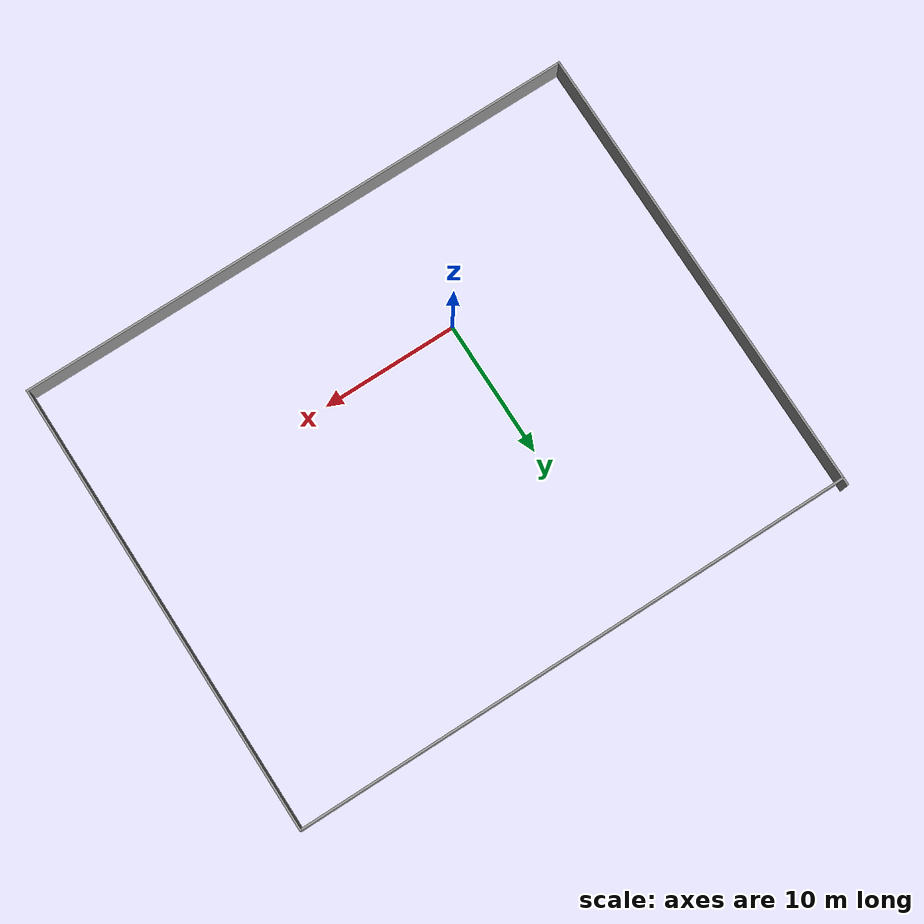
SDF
<sdf version="1.8">
 <world name="leo_marsyard">
  <physics name="1ms" type="dart">
   <max_step_size>0.001</max_step_size>
   <real_time_factor>1.0</real_time_factor>
   <dart><collision_detector>bullet</collision_detector></dart>
  </physics>
  <plugin filename="ignition-gazebo-physics-system" name="ignition::gazebo::systems::Physics"/>
  <plugin filename="ignition-gazebo-sensors-system" name="ignition::gazebo::systems::Sensors">
   <render_engine>ogre2</render_engine>
  </plugin>
  <plugin filename="ignition-gazebo-scene-broadcaster-system" name="ignition::gazebo::systems::SceneBroadcaster"/>
  <plugin filename="ignition-gazebo-user-commands-system" name="ignition::gazebo::systems::UserCommands"/>
  <spherical_coordinates>
   <surface_model>EARTH_WGS84</surface_model>
   <world_frame_orientation>ENU</world_frame_orientation>
   <latitude_deg>52.2184</latitude_deg>
   <longitude_deg>6.8753</longitude_deg>
   <elevation>0</elevation>
   <heading_deg>0</heading_deg>
  </spherical_coordinates>
  <light name="sun" type="directional">
   <pose>0 0 10 0 0 0</pose>
   <diffuse>0.8 0.8 0.8 1</diffuse>
   <specular>0.2 0.2 0.2 1</specular>
   <attenuation>
    <range>1000</range>
    <constant>0.9</constant>
    <linear>0.01</linear>
    <quadratic>0.001</quadratic>
   </attenuation>
   <direction>-0.5 0.1 -0.9</direction>
  </light>
  <model name="Untitled">
   <pose>-8.03 6.05 0 0 -0 0</pose>
   <link name="Wall_30">
    <collision name="Wall_30_Collision">
     <geometry><box><size>41.75 0.15 2.5</size></box></geometry>
     <pose>0 0 1.25 0 -0 0</pose>
    </collision>
    <visual name="Wall_30_Visual">
     <pose>0 0 1.25 0 -0 0</pose>
     <geometry><box><size>41.75 0.15 2.5</size></box></geometry>
     <material>
      <script><uri>file://media/materials/scripts/gazebo.material</uri><name>Gazebo/Grey</name></script>
      <ambient>1 1 1 1</ambient>
     </material>
     <meta><layer>0</layer></meta>
    </visual>
    <pose>13.25 16.55 0 0 -0 0</pose>
   </link>
   <link name="Wall_31">
    <collision name="Wall_31_Collision">
     <geometry><box><size>33.75 0.15 2.5</size></box></geometry>
     <pose>0 0 1.25 0 -0 0</pose>
    </collision>
    <visual name="Wall_31_Visual">
     <pose>0 0 1.25 0 -0 0</pose>
     <geometry><box><size>33.75 0.15 2.5</size></box></geometry>
     <material>
      <script><uri>file://media/materials/scripts/gazebo.material</uri><name>Gazebo/Grey</name></script>
      <ambient>1 1 1 1</ambient>
     </material>
     <meta><layer>0</layer></meta>
    </visual>
    <pose>34.05 -0.25 0 0 -0 -1.5708</pose>
   </link>
   <link name="Wall_32">
    <collision name="Wall_32_Collision">
     <geometry><box><size>41.75 0.15 2.5</size></box></geometry>
     <pose>0 0 1.25 0 -0 0</pose>
    </collision>
    <visual name="Wall_32_Visual">
     <pose>0 0 1.25 0 -0 0</pose>
     <geometry><box><size>41.75 0.15 2.5</size></box></geometry>
     <material>
      <script><uri>file://media/materials/scripts/gazebo.material</uri><name>Gazebo/Grey</name></script>
      <ambient>1 1 1 1</ambient>
     </material>
     <meta><layer>0</layer></meta>
    </visual>
    <pose>13.25 -17.05 0 0 -0 3.14159</pose>
   </link>
   <link name="Wall_33">
    <collision name="Wall_33_Collision">
     <geometry><box><size>34.25 0.15 2.5</size></box></geometry>
     <pose>0 0 1.25 0 -0 0</pose>
    </collision>
    <visual name="Wall_33_Visual">
     <pose>0 0 1.25 0 -0 0</pose>
     <geometry><box><size>34.25 0.15 2.5</size></box></geometry>
     <material>
      <script><uri>file://media/materials/scripts/gazebo.material</uri><name>Gazebo/Grey</name></script>
      <ambient>1 1 1 1</ambient>
     </material>
     <meta><layer>0</layer></meta>
    </visual>
    <pose>-7.55 -0 0 0 -0 1.5708</pose>
   </link>
   <static>1</static>
  </model>
 </world>
</sdf>
